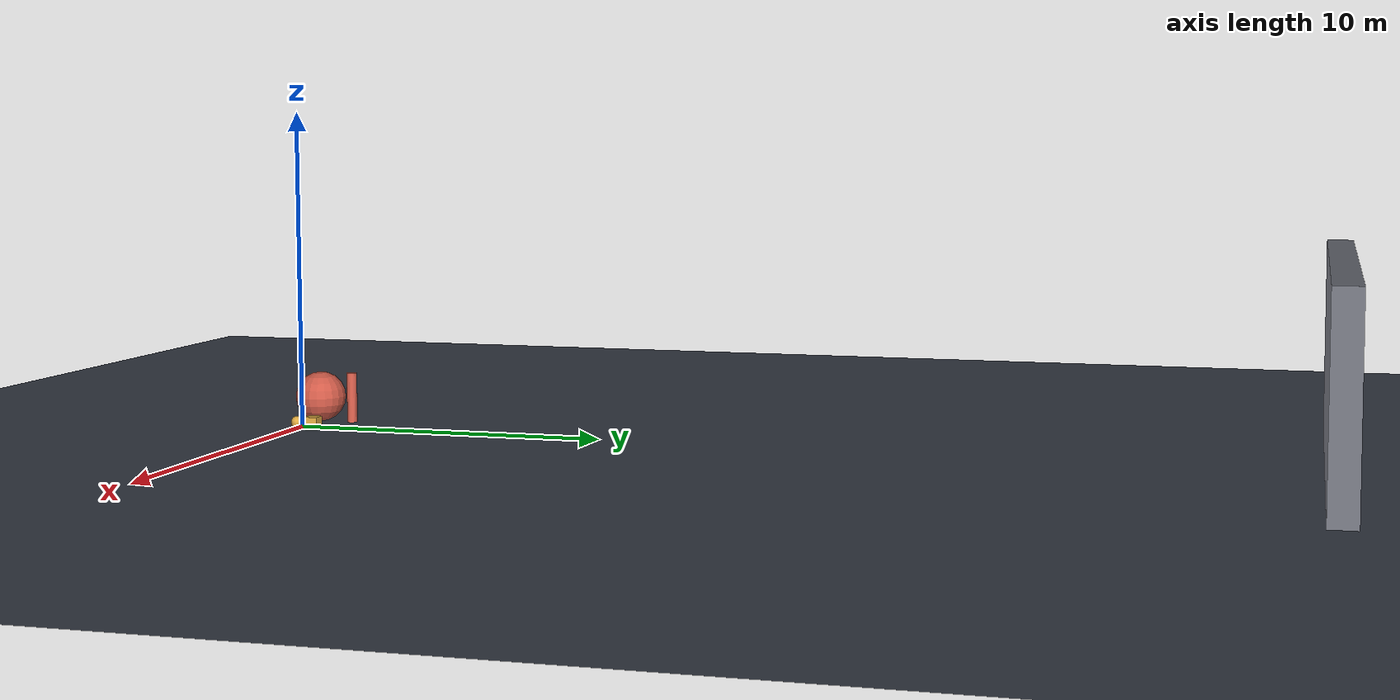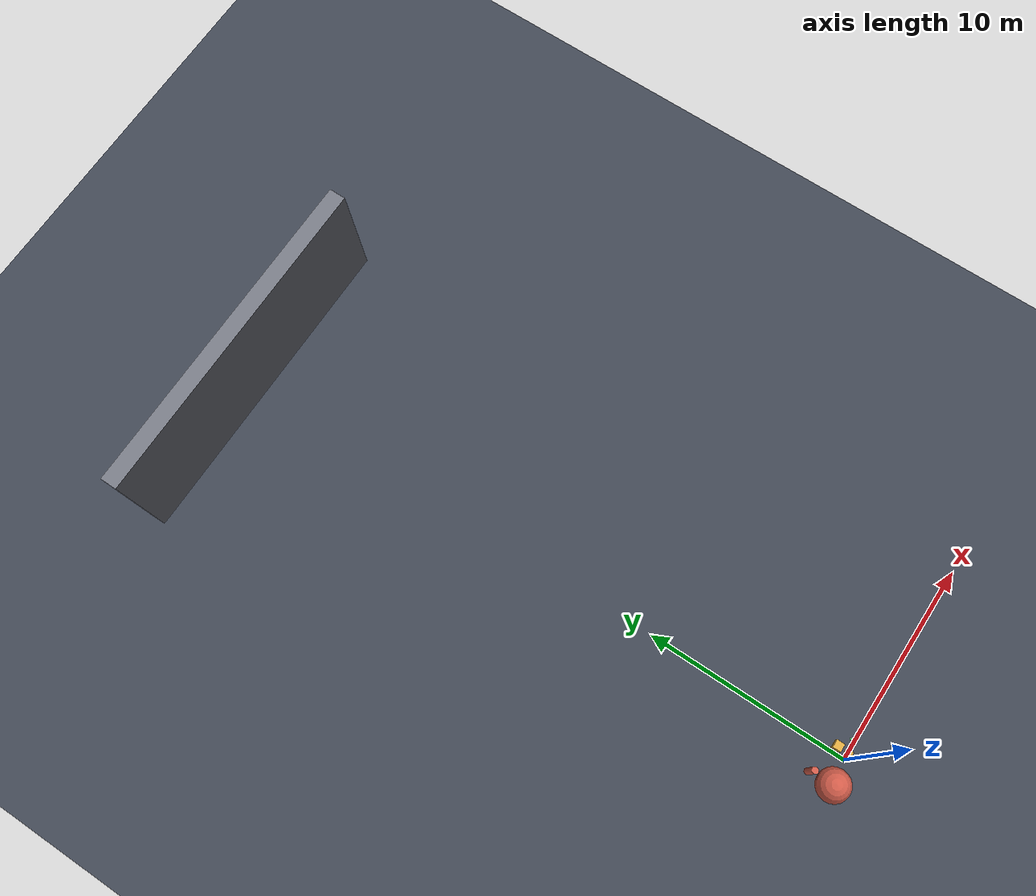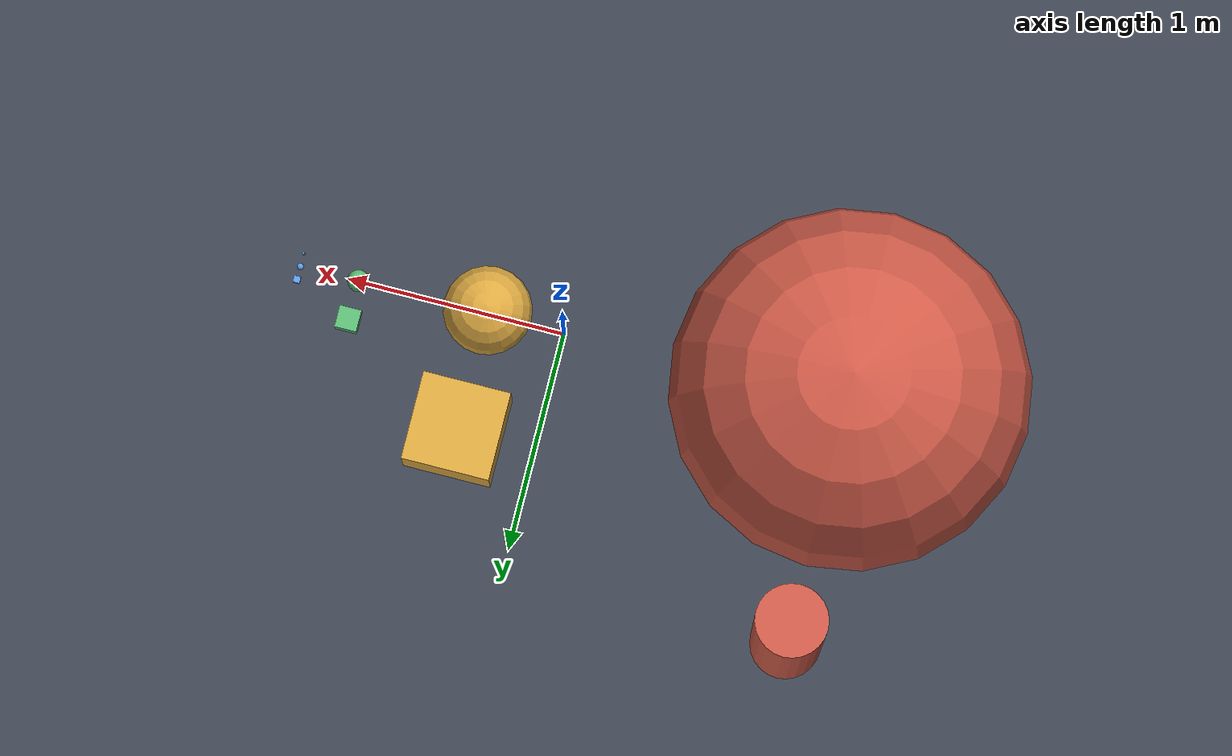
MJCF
<mujoco model="scale_extremes">
  <compiler angle="degree" autolimits="true"/>

  <visual>
    <headlight ambient="0.25 0.25 0.25" diffuse="0.4 0.4 0.4" specular="0.4 0.4 0.4"/>
    <quality shadowsize="4096" numslices="28" numstacks="16"/>

    <map znear="0.005" zfar="120" shadowclip="1.5" shadowscale="0.5"/>
  </visual>

  <asset>
    <texture name="grid" type="2d" builtin="checker" width="512" height="512"
             rgb1="0.19 0.21 0.25" rgb2="0.29 0.32 0.37"/>
    <material name="grid" texture="grid" texrepeat="1 1" texuniform="true"/>
    <material name="s_huge" rgba="0.80 0.35 0.28 1" specular="0.5" shininess="0.6"/>
    <material name="s_big" rgba="0.85 0.65 0.25 1" specular="0.5" shininess="0.6"/>
    <material name="s_small" rgba="0.35 0.72 0.45 1" specular="0.5" shininess="0.6"/>
    <material name="s_tiny" rgba="0.35 0.60 0.90 1" specular="0.7" shininess="0.8"/>
    <material name="far" rgba="0.45 0.46 0.50 1" specular="0.1" shininess="0.2"/>
  </asset>

  <worldbody>
    <light name="sun" type="directional" pos="3 -4 6" dir="-0.35 0.45 -1"
           diffuse="0.7 0.7 0.7" specular="0.3 0.3 0.3" castshadow="true"/>

    <geom name="floor" type="plane" size="0 0 0.05" material="grid"/>

    <body name="huge" pos="-1.30 0 0">
      <geom name="huge_ball" type="sphere" pos="0 0 0.80" size="0.80" material="s_huge"/>
      <geom name="huge_post" type="cylinder" pos="0 1.10 0.80" size="0.16 0.80" material="s_huge"/>
    </body>

    <body name="big" pos="0.35 0 0">
      <geom name="big_ball" type="sphere" pos="0 0 0.20" size="0.20" material="s_big"/>
      <geom name="big_box" type="box" pos="0 0.55 0.20" size="0.20 0.20 0.20" material="s_big"/>
    </body>

    <body name="small" pos="0.95 0 0">
      <geom name="small_ball" type="sphere" pos="0 0 0.05" size="0.05" material="s_small"/>
      <geom name="small_box" type="box" pos="0 0.18 0.05" size="0.05 0.05 0.05" material="s_small"/>
    </body>

    <body name="tiny" pos="1.22 0 0">
      <geom name="tiny_ball" type="sphere" pos="0 0 0.015" size="0.015" material="s_tiny"/>
      <geom name="tiny_box" type="box" pos="0 0.06 0.015" size="0.015 0.015 0.015"
            material="s_tiny"/>
      <geom name="tiny_pin" type="capsule" fromto="0 -0.06 0 0 -0.06 0.03" size="0.006"
            material="s_tiny"/>
    </body>

    <body name="tiny_on_huge" pos="-1.30 -0.86 0">
      <geom name="tiny_bolt" type="sphere" pos="0 0 0.015" size="0.015" material="s_tiny"/>
    </body>

    <body name="far_wall" pos="0 32 3">
      <geom name="far_wall" type="box" size="8 0.4 3" material="far"/>
    </body>

    <camera name="scales" pos="0.55 -2.35 0.95" xyaxes="0.94 0.34 0 -0.10 0.28 0.95"/>
    <camera name="scales_micro" pos="1.24 -0.16 0.05" xyaxes="1 0 0 0 0.25 0.97"/>
  </worldbody>
</mujoco>
